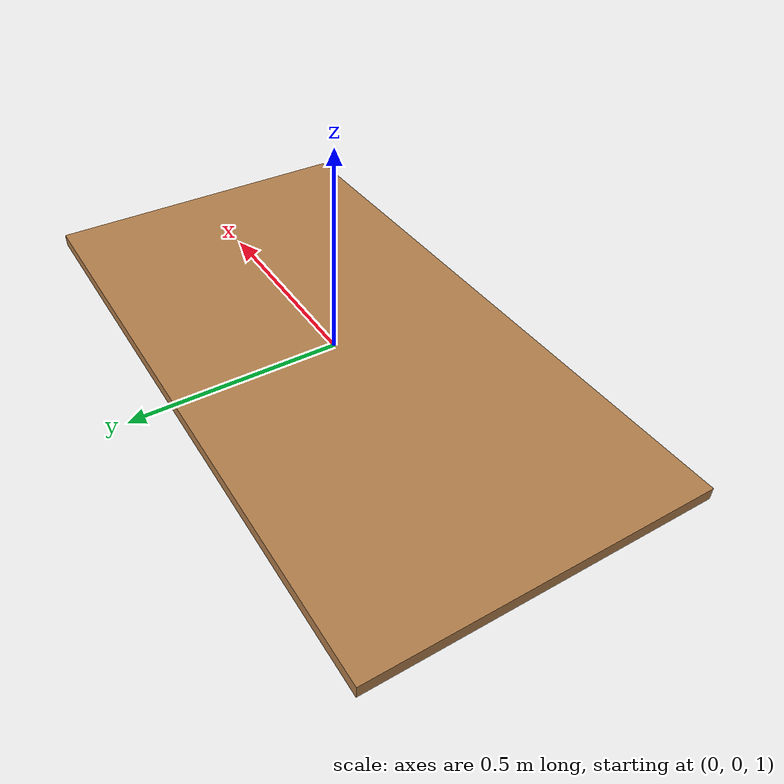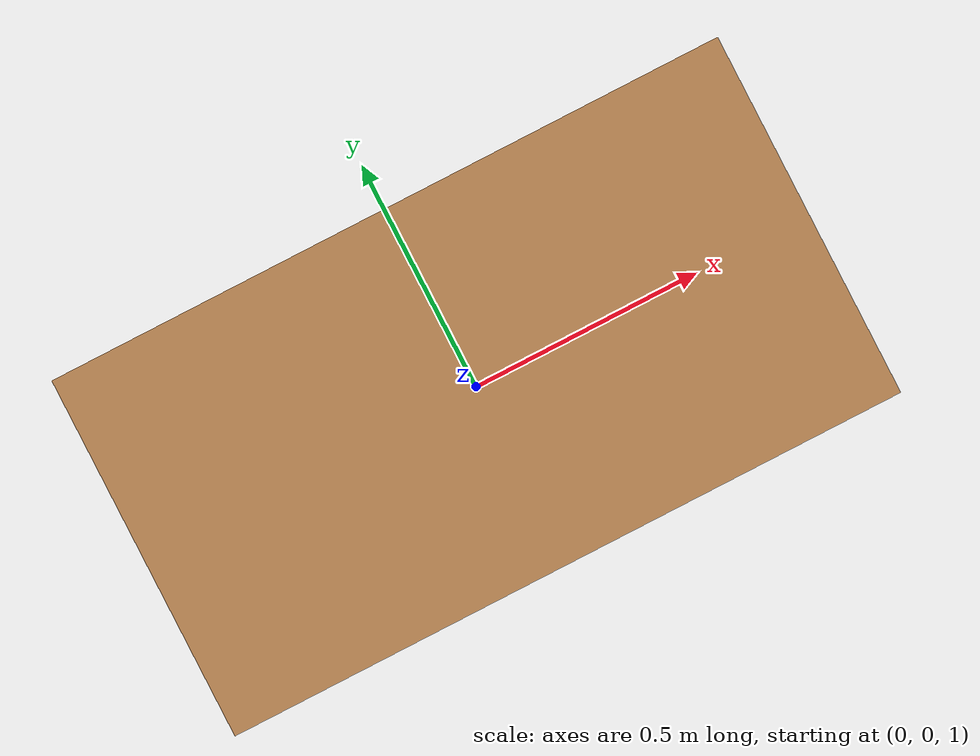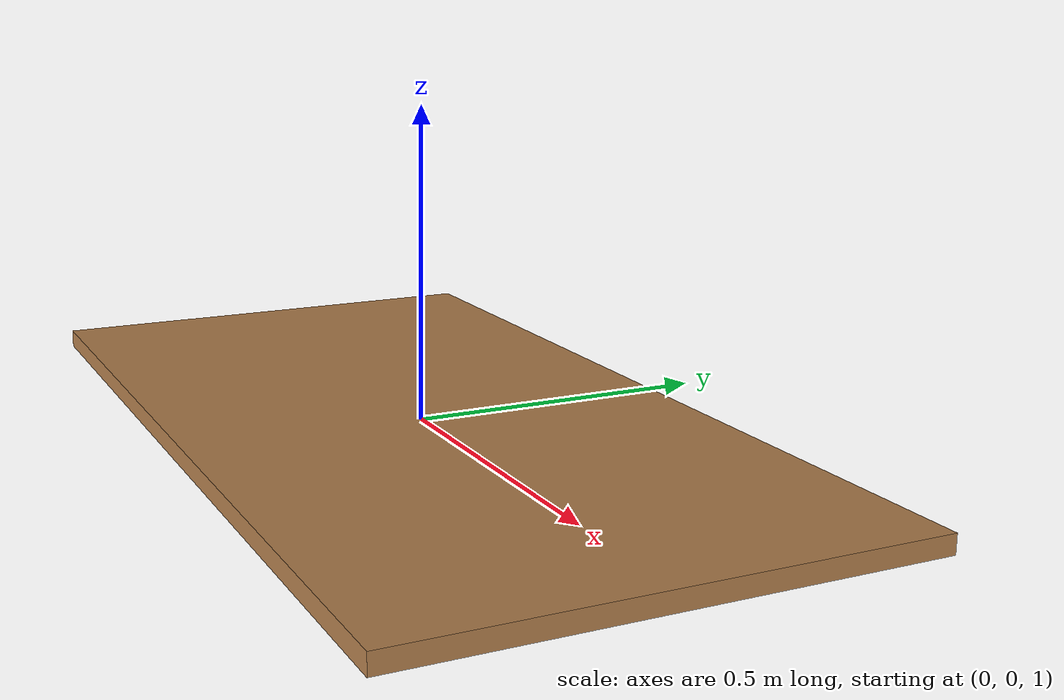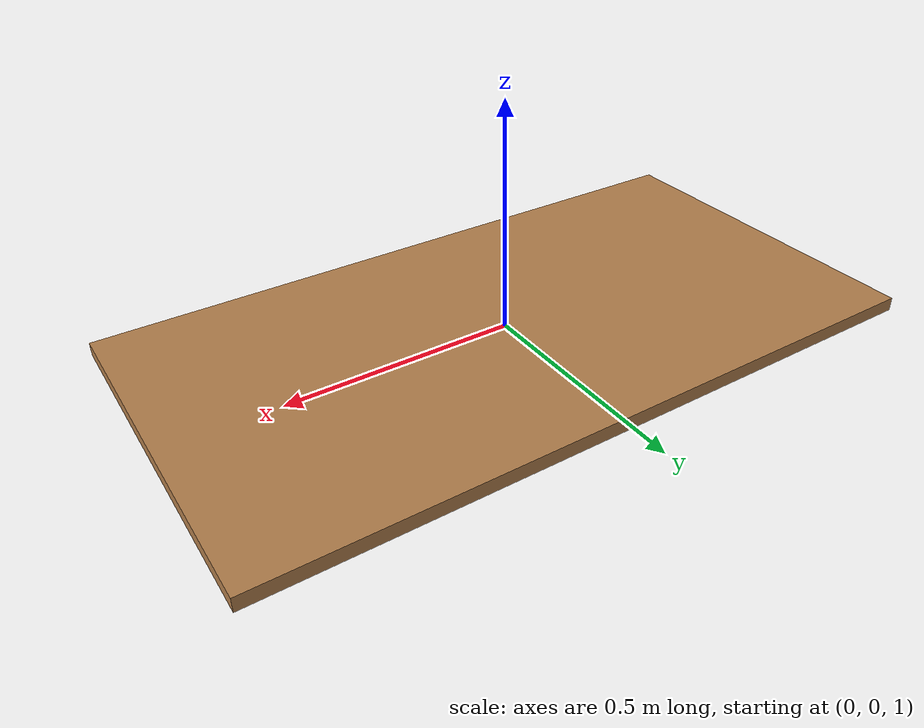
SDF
<?xml version="1.0" ?>
<sdf version="1.8">
  <world name="two_joint_arm_world">

    <!-- LIGHT -->

    <light type="directional" name="sun">
        <cast_shadows>true</cast_shadows>
        <pose>0 0 10 0 0 0</pose>
        <diffuse>0.8 0.8 0.8 1</diffuse>
        <specular>0.2 0.2 0.2 1</specular>
        <attenuation>
            <range>1000</range>
            <constant>0.9</constant>
            <linear>0.01</linear>
            <quadratic>0.001</quadratic>
        </attenuation>
        <direction>-0.5 0.1 -0.9</direction>
    </light>

    <model name="wood_object">
        <link name="wood">
            <collision name="surface">
                <pose>0 0 1.0 0 0 0</pose>
                <geometry>
                    <box>
                        <size>0.25 0.1333 0.005</size>
                    </box>
                </geometry>
                <surface>
                    <friction>
                        <ode>
                            <mu>0.6</mu>
                            <mu2>0.6</mu2>
                        </ode>
                    </friction>
                </surface>
            </collision>
            <visual name="visual1">
                <pose>0 0 1.0 0 0 0</pose>
                <geometry>
                    <box>
                        <size>1.5 0.8 0.03</size>
                    </box>
                </geometry>
                <material>
                    <diffuse>1.0 1.0 1.0</diffuse>
                    <script>
                        <uri>file://media/materials/scripts/gazebo.material</uri>
                        <name>Gazebo/Wood</name>
                    </script>
                    <!-- PBR for Ignition, material scripts for gazebo classic-->
                    <pbr>
                        <metal>
                            <albedo_map>https://fuel.gazebosim.org/1.0/openrobotics/models/table/4/files/Table_Diffuse.jpg</albedo_map>
                        </metal>
                    </pbr>
                </material>
            </visual>
        </link>
    </model>

  </world>
</sdf>
